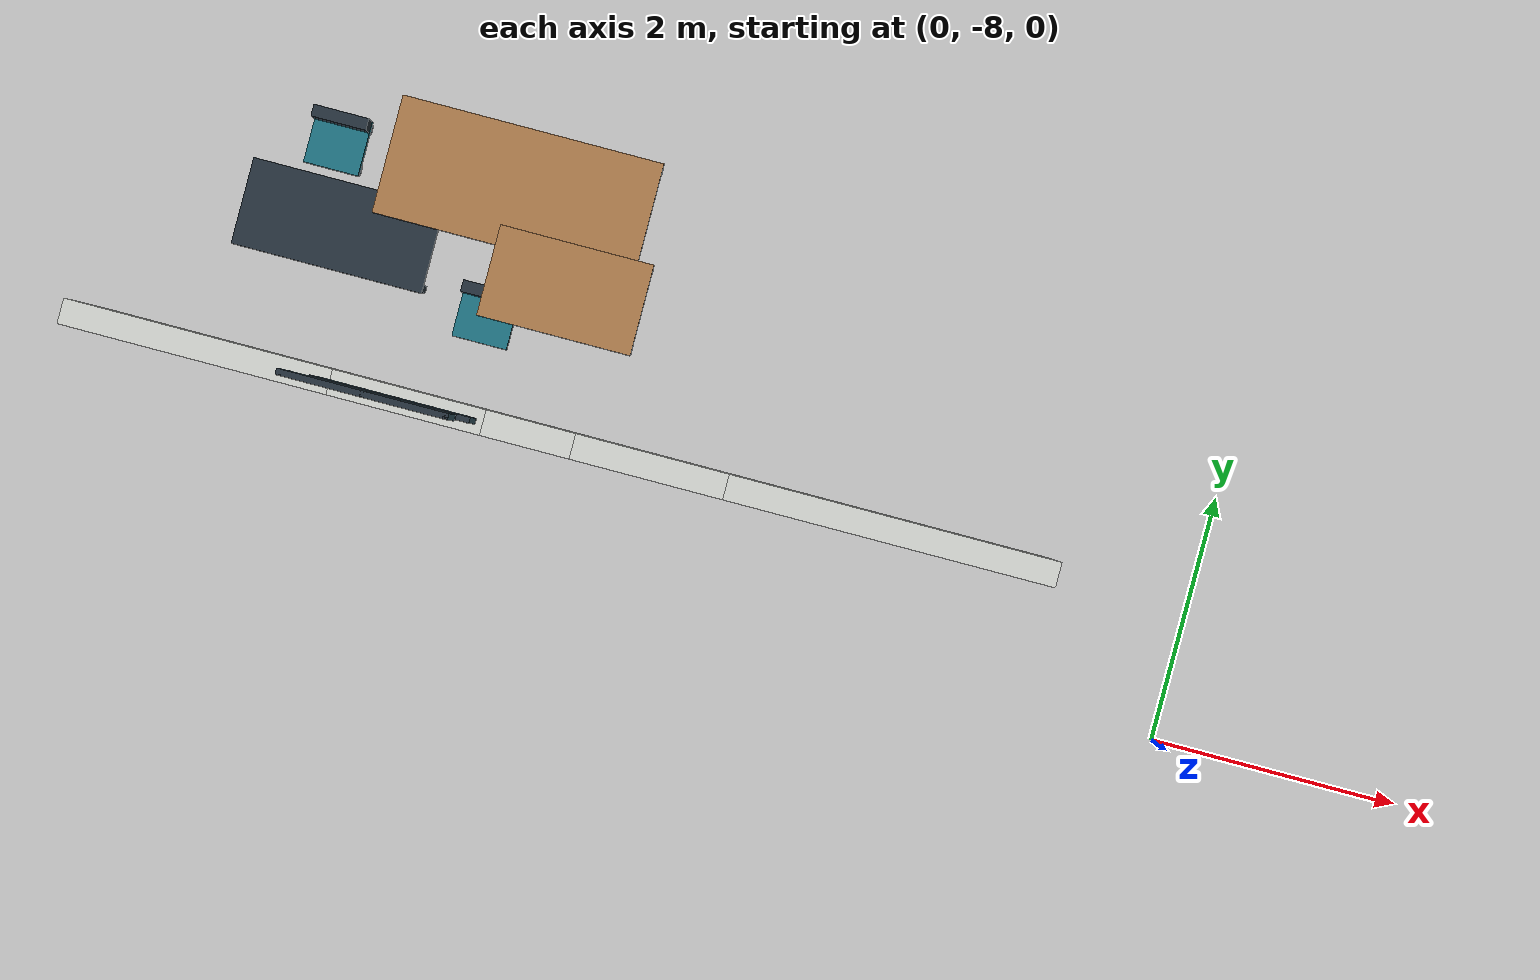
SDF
<sdf version="1.6">
 <world name="three_floor">
  <model name="f1_wall_004">
   <static>true</static>
   <pose>-5.1 -6.9 1.5 0 0 0</pose>
   <link name="f1_wall_004_link">
    <collision name="f1_wall_004_link_panel_0_collision">
     <pose>-2.85 0 0 0 0 0</pose>
     <geometry><box><size>2.1 0.2 3</size></box></geometry>
    </collision>
    <visual name="f1_wall_004_link_panel_0_visual">
     <pose>-2.85 0 0 0 0 0</pose>
     <geometry><box><size>2.1 0.2 3</size></box></geometry>
     <material><ambient>.84 .85 .83 1</ambient><diffuse>.84 .85 .83 1</diffuse></material>
    </visual>
    <collision name="f1_wall_004_link_sill_0_collision">
     <pose>-1.2 0 -1.025 0 0 0</pose>
     <geometry><box><size>1.2 0.2 0.95</size></box></geometry>
    </collision>
    <visual name="f1_wall_004_link_sill_0_visual">
     <pose>-1.2 0 -1.025 0 0 0</pose>
     <geometry><box><size>1.2 0.2 0.95</size></box></geometry>
     <material><ambient>.84 .85 .83 1</ambient><diffuse>.84 .85 .83 1</diffuse></material>
    </visual>
    <collision name="f1_wall_004_link_header_0_collision">
     <pose>-1.2 0 1 0 0 0</pose>
     <geometry><box><size>1.2 0.2 1</size></box></geometry>
    </collision>
    <visual name="f1_wall_004_link_header_0_visual">
     <pose>-1.2 0 1 0 0 0</pose>
     <geometry><box><size>1.2 0.2 1</size></box></geometry>
     <material><ambient>.84 .85 .83 1</ambient><diffuse>.84 .85 .83 1</diffuse></material>
    </visual>
    <collision name="f1_wall_004_link_panel_1_collision">
     <pose>-0.25 0 0 0 0 0</pose>
     <geometry><box><size>0.7 0.2 3</size></box></geometry>
    </collision>
    <visual name="f1_wall_004_link_panel_1_visual">
     <pose>-0.25 0 0 0 0 0</pose>
     <geometry><box><size>0.7 0.2 3</size></box></geometry>
     <material><ambient>.84 .85 .83 1</ambient><diffuse>.84 .85 .83 1</diffuse></material>
    </visual>
    <collision name="f1_wall_004_link_sill_1_collision">
     <pose>0.7 0 -1.025 0 0 0</pose>
     <geometry><box><size>1.2 0.2 0.95</size></box></geometry>
    </collision>
    <visual name="f1_wall_004_link_sill_1_visual">
     <pose>0.7 0 -1.025 0 0 0</pose>
     <geometry><box><size>1.2 0.2 0.95</size></box></geometry>
     <material><ambient>.84 .85 .83 1</ambient><diffuse>.84 .85 .83 1</diffuse></material>
    </visual>
    <collision name="f1_wall_004_link_header_1_collision">
     <pose>0.7 0 1 0 0 0</pose>
     <geometry><box><size>1.2 0.2 1</size></box></geometry>
    </collision>
    <visual name="f1_wall_004_link_header_1_visual">
     <pose>0.7 0 1 0 0 0</pose>
     <geometry><box><size>1.2 0.2 1</size></box></geometry>
     <material><ambient>.84 .85 .83 1</ambient><diffuse>.84 .85 .83 1</diffuse></material>
    </visual>
    <collision name="f1_wall_004_link_last_panel_collision">
     <pose>2.6 0 0 0 0 0</pose>
     <geometry><box><size>2.6 0.2 3</size></box></geometry>
    </collision>
    <visual name="f1_wall_004_link_last_panel_visual">
     <pose>2.6 0 0 0 0 0</pose>
     <geometry><box><size>2.6 0.2 3</size></box></geometry>
     <material><ambient>.84 .85 .83 1</ambient><diffuse>.84 .85 .83 1</diffuse></material>
    </visual>
   </link>
  </model>
  <model name="f1_s2_window_08">
   <static>true</static>
   <pose>-6.3 -6.9 1.475 0 0 0</pose>
   <link name="f1_s2_window_08_link">
    <collision name="f1_s2_window_08_link_glass_collision">
     <geometry><box><size>1.2 0.045 1.05</size></box></geometry>
    </collision>
    <visual name="f1_s2_window_08_link_glass_visual">
     <geometry><box><size>1.2 0.045 1.05</size></box></geometry>
     <material><ambient>0.44 0.76 0.83 1</ambient><diffuse>0.44 0.76 0.83 1</diffuse></material>
     <transparency>0.65</transparency>
    </visual>
    <collision name="f1_s2_window_08_link_mullion_-0.58_collision">
     <pose>-0.58 0 0 0 0 0</pose>
     <geometry><box><size>0.035 0.045 1.05</size></box></geometry>
    </collision>
    <visual name="f1_s2_window_08_link_mullion_-0.58_visual">
     <pose>-0.58 0 0 0 0 0</pose>
     <geometry><box><size>0.035 0.045 1.05</size></box></geometry>
     <material><ambient>0.15 0.2 0.24 1</ambient><diffuse>0.15 0.2 0.24 1</diffuse></material>
    </visual>
    <collision name="f1_s2_window_08_link_mullion_0.58_collision">
     <pose>0.58 0 0 0 0 0</pose>
     <geometry><box><size>0.035 0.045 1.05</size></box></geometry>
    </collision>
    <visual name="f1_s2_window_08_link_mullion_0.58_visual">
     <pose>0.58 0 0 0 0 0</pose>
     <geometry><box><size>0.035 0.045 1.05</size></box></geometry>
     <material><ambient>0.15 0.2 0.24 1</ambient><diffuse>0.15 0.2 0.24 1</diffuse></material>
    </visual>
    <collision name="f1_s2_window_08_link_mullion_0_collision">
     <geometry><box><size>0.035 0.045 1.05</size></box></geometry>
    </collision>
    <visual name="f1_s2_window_08_link_mullion_0_visual">
     <geometry><box><size>0.035 0.045 1.05</size></box></geometry>
     <material><ambient>0.15 0.2 0.24 1</ambient><diffuse>0.15 0.2 0.24 1</diffuse></material>
    </visual>
    <collision name="f1_s2_window_08_link_frame_-0.51_collision">
     <pose>0 0 -0.51 0 0 0</pose>
     <geometry><box><size>1.2 0.045 0.03</size></box></geometry>
    </collision>
    <visual name="f1_s2_window_08_link_frame_-0.51_visual">
     <pose>0 0 -0.51 0 0 0</pose>
     <geometry><box><size>1.2 0.045 0.03</size></box></geometry>
     <material><ambient>0.15 0.2 0.24 1</ambient><diffuse>0.15 0.2 0.24 1</diffuse></material>
    </visual>
    <collision name="f1_s2_window_08_link_frame_0.51_collision">
     <pose>0 0 0.51 0 0 0</pose>
     <geometry><box><size>1.2 0.045 0.03</size></box></geometry>
    </collision>
    <visual name="f1_s2_window_08_link_frame_0.51_visual">
     <pose>0 0 0.51 0 0 0</pose>
     <geometry><box><size>1.2 0.045 0.03</size></box></geometry>
     <material><ambient>0.15 0.2 0.24 1</ambient><diffuse>0.15 0.2 0.24 1</diffuse></material>
    </visual>
   </link>
  </model>
  <model name="f2_s2_window_19">
   <static>true</static>
   <pose>-6.3 -6.9 4.675 0 0 0</pose>
   <link name="f2_s2_window_19_link">
    <collision name="f2_s2_window_19_link_glass_collision">
     <geometry><box><size>1.2 0.045 1.05</size></box></geometry>
    </collision>
    <visual name="f2_s2_window_19_link_glass_visual">
     <geometry><box><size>1.2 0.045 1.05</size></box></geometry>
     <material><ambient>0.44 0.76 0.83 1</ambient><diffuse>0.44 0.76 0.83 1</diffuse></material>
     <transparency>0.65</transparency>
    </visual>
    <collision name="f2_s2_window_19_link_mullion_-0.58_collision">
     <pose>-0.58 0 0 0 0 0</pose>
     <geometry><box><size>0.035 0.045 1.05</size></box></geometry>
    </collision>
    <visual name="f2_s2_window_19_link_mullion_-0.58_visual">
     <pose>-0.58 0 0 0 0 0</pose>
     <geometry><box><size>0.035 0.045 1.05</size></box></geometry>
     <material><ambient>0.15 0.2 0.24 1</ambient><diffuse>0.15 0.2 0.24 1</diffuse></material>
    </visual>
    <collision name="f2_s2_window_19_link_mullion_0.58_collision">
     <pose>0.58 0 0 0 0 0</pose>
     <geometry><box><size>0.035 0.045 1.05</size></box></geometry>
    </collision>
    <visual name="f2_s2_window_19_link_mullion_0.58_visual">
     <pose>0.58 0 0 0 0 0</pose>
     <geometry><box><size>0.035 0.045 1.05</size></box></geometry>
     <material><ambient>0.15 0.2 0.24 1</ambient><diffuse>0.15 0.2 0.24 1</diffuse></material>
    </visual>
    <collision name="f2_s2_window_19_link_mullion_0_collision">
     <geometry><box><size>0.035 0.045 1.05</size></box></geometry>
    </collision>
    <visual name="f2_s2_window_19_link_mullion_0_visual">
     <geometry><box><size>0.035 0.045 1.05</size></box></geometry>
     <material><ambient>0.15 0.2 0.24 1</ambient><diffuse>0.15 0.2 0.24 1</diffuse></material>
    </visual>
    <collision name="f2_s2_window_19_link_frame_-0.51_collision">
     <pose>0 0 -0.51 0 0 0</pose>
     <geometry><box><size>1.2 0.045 0.03</size></box></geometry>
    </collision>
    <visual name="f2_s2_window_19_link_frame_-0.51_visual">
     <pose>0 0 -0.51 0 0 0</pose>
     <geometry><box><size>1.2 0.045 0.03</size></box></geometry>
     <material><ambient>0.15 0.2 0.24 1</ambient><diffuse>0.15 0.2 0.24 1</diffuse></material>
    </visual>
    <collision name="f2_s2_window_19_link_frame_0.51_collision">
     <pose>0 0 0.51 0 0 0</pose>
     <geometry><box><size>1.2 0.045 0.03</size></box></geometry>
    </collision>
    <visual name="f2_s2_window_19_link_frame_0.51_visual">
     <pose>0 0 0.51 0 0 0</pose>
     <geometry><box><size>1.2 0.045 0.03</size></box></geometry>
     <material><ambient>0.15 0.2 0.24 1</ambient><diffuse>0.15 0.2 0.24 1</diffuse></material>
    </visual>
   </link>
  </model>
  <model name="f3_s2_window_31">
   <static>true</static>
   <pose>-6.3 -6.9 7.875 0 0 0</pose>
   <link name="f3_s2_window_31_link">
    <collision name="f3_s2_window_31_link_glass_collision">
     <geometry><box><size>1.2 0.045 1.05</size></box></geometry>
    </collision>
    <visual name="f3_s2_window_31_link_glass_visual">
     <geometry><box><size>1.2 0.045 1.05</size></box></geometry>
     <material><ambient>0.44 0.76 0.83 1</ambient><diffuse>0.44 0.76 0.83 1</diffuse></material>
     <transparency>0.65</transparency>
    </visual>
    <collision name="f3_s2_window_31_link_mullion_-0.58_collision">
     <pose>-0.58 0 0 0 0 0</pose>
     <geometry><box><size>0.035 0.045 1.05</size></box></geometry>
    </collision>
    <visual name="f3_s2_window_31_link_mullion_-0.58_visual">
     <pose>-0.58 0 0 0 0 0</pose>
     <geometry><box><size>0.035 0.045 1.05</size></box></geometry>
     <material><ambient>0.15 0.2 0.24 1</ambient><diffuse>0.15 0.2 0.24 1</diffuse></material>
    </visual>
    <collision name="f3_s2_window_31_link_mullion_0.58_collision">
     <pose>0.58 0 0 0 0 0</pose>
     <geometry><box><size>0.035 0.045 1.05</size></box></geometry>
    </collision>
    <visual name="f3_s2_window_31_link_mullion_0.58_visual">
     <pose>0.58 0 0 0 0 0</pose>
     <geometry><box><size>0.035 0.045 1.05</size></box></geometry>
     <material><ambient>0.15 0.2 0.24 1</ambient><diffuse>0.15 0.2 0.24 1</diffuse></material>
    </visual>
    <collision name="f3_s2_window_31_link_mullion_0_collision">
     <geometry><box><size>0.035 0.045 1.05</size></box></geometry>
    </collision>
    <visual name="f3_s2_window_31_link_mullion_0_visual">
     <geometry><box><size>0.035 0.045 1.05</size></box></geometry>
     <material><ambient>0.15 0.2 0.24 1</ambient><diffuse>0.15 0.2 0.24 1</diffuse></material>
    </visual>
    <collision name="f3_s2_window_31_link_frame_-0.51_collision">
     <pose>0 0 -0.51 0 0 0</pose>
     <geometry><box><size>1.2 0.045 0.03</size></box></geometry>
    </collision>
    <visual name="f3_s2_window_31_link_frame_-0.51_visual">
     <pose>0 0 -0.51 0 0 0</pose>
     <geometry><box><size>1.2 0.045 0.03</size></box></geometry>
     <material><ambient>0.15 0.2 0.24 1</ambient><diffuse>0.15 0.2 0.24 1</diffuse></material>
    </visual>
    <collision name="f3_s2_window_31_link_frame_0.51_collision">
     <pose>0 0 0.51 0 0 0</pose>
     <geometry><box><size>1.2 0.045 0.03</size></box></geometry>
    </collision>
    <visual name="f3_s2_window_31_link_frame_0.51_visual">
     <pose>0 0 0.51 0 0 0</pose>
     <geometry><box><size>1.2 0.045 0.03</size></box></geometry>
     <material><ambient>0.15 0.2 0.24 1</ambient><diffuse>0.15 0.2 0.24 1</diffuse></material>
    </visual>
   </link>
  </model>
  <model name="f1_s2_furniture_04_workbench">
   <static>true</static>
   <pose>-7.3 -5.7 0 0 0 0</pose>
   <link name="f1_s2_furniture_04_workbench_link">
    <collision name="f1_s2_furniture_04_workbench_link_top_collision">
     <pose>0 0 0.775 0 0 0</pose>
     <geometry><box><size>1.55 0.7 0.09</size></box></geometry>
    </collision>
    <visual name="f1_s2_furniture_04_workbench_link_top_visual">
     <pose>0 0 0.775 0 0 0</pose>
     <geometry><box><size>1.55 0.7 0.09</size></box></geometry>
     <material><ambient>0.15 0.2 0.24 1</ambient><diffuse>0.15 0.2 0.24 1</diffuse></material>
    </visual>
    <collision name="f1_s2_furniture_04_workbench_link_leg_-0.73_-0.305_collision">
     <pose>-0.73 -0.305 0.365 0 0 0</pose>
     <geometry><box><size>0.06 0.06 0.73</size></box></geometry>
    </collision>
    <visual name="f1_s2_furniture_04_workbench_link_leg_-0.73_-0.305_visual">
     <pose>-0.73 -0.305 0.365 0 0 0</pose>
     <geometry><box><size>0.06 0.06 0.73</size></box></geometry>
     <material><ambient>0.15 0.2 0.24 1</ambient><diffuse>0.15 0.2 0.24 1</diffuse></material>
    </visual>
    <collision name="f1_s2_furniture_04_workbench_link_leg_-0.73_0.305_collision">
     <pose>-0.73 0.305 0.365 0 0 0</pose>
     <geometry><box><size>0.06 0.06 0.73</size></box></geometry>
    </collision>
    <visual name="f1_s2_furniture_04_workbench_link_leg_-0.73_0.305_visual">
     <pose>-0.73 0.305 0.365 0 0 0</pose>
     <geometry><box><size>0.06 0.06 0.73</size></box></geometry>
     <material><ambient>0.15 0.2 0.24 1</ambient><diffuse>0.15 0.2 0.24 1</diffuse></material>
    </visual>
    <collision name="f1_s2_furniture_04_workbench_link_leg_0.73_-0.305_collision">
     <pose>0.73 -0.305 0.365 0 0 0</pose>
     <geometry><box><size>0.06 0.06 0.73</size></box></geometry>
    </collision>
    <visual name="f1_s2_furniture_04_workbench_link_leg_0.73_-0.305_visual">
     <pose>0.73 -0.305 0.365 0 0 0</pose>
     <geometry><box><size>0.06 0.06 0.73</size></box></geometry>
     <material><ambient>0.15 0.2 0.24 1</ambient><diffuse>0.15 0.2 0.24 1</diffuse></material>
    </visual>
    <collision name="f1_s2_furniture_04_workbench_link_leg_0.73_0.305_collision">
     <pose>0.73 0.305 0.365 0 0 0</pose>
     <geometry><box><size>0.06 0.06 0.73</size></box></geometry>
    </collision>
    <visual name="f1_s2_furniture_04_workbench_link_leg_0.73_0.305_visual">
     <pose>0.73 0.305 0.365 0 0 0</pose>
     <geometry><box><size>0.06 0.06 0.73</size></box></geometry>
     <material><ambient>0.15 0.2 0.24 1</ambient><diffuse>0.15 0.2 0.24 1</diffuse></material>
    </visual>
   </link>
  </model>
  <model name="f2_s2_furniture_27_table">
   <static>true</static>
   <pose>-5.85 -5.15 3.2 0 0 0</pose>
   <link name="f2_s2_furniture_27_table_link">
    <collision name="f2_s2_furniture_27_table_link_top_collision">
     <pose>0 0 0.715 0 0 0</pose>
     <geometry><box><size>2 0.9 0.09</size></box></geometry>
    </collision>
    <visual name="f2_s2_furniture_27_table_link_top_visual">
     <pose>0 0 0.715 0 0 0</pose>
     <geometry><box><size>2 0.9 0.09</size></box></geometry>
     <material><ambient>0.69 0.49 0.3 1</ambient><diffuse>0.69 0.49 0.3 1</diffuse></material>
    </visual>
    <collision name="f2_s2_furniture_27_table_link_leg_-0.955_-0.405_collision">
     <pose>-0.955 -0.405 0.335 0 0 0</pose>
     <geometry><box><size>0.06 0.06 0.67</size></box></geometry>
    </collision>
    <visual name="f2_s2_furniture_27_table_link_leg_-0.955_-0.405_visual">
     <pose>-0.955 -0.405 0.335 0 0 0</pose>
     <geometry><box><size>0.06 0.06 0.67</size></box></geometry>
     <material><ambient>0.15 0.2 0.24 1</ambient><diffuse>0.15 0.2 0.24 1</diffuse></material>
    </visual>
    <collision name="f2_s2_furniture_27_table_link_leg_-0.955_0.405_collision">
     <pose>-0.955 0.405 0.335 0 0 0</pose>
     <geometry><box><size>0.06 0.06 0.67</size></box></geometry>
    </collision>
    <visual name="f2_s2_furniture_27_table_link_leg_-0.955_0.405_visual">
     <pose>-0.955 0.405 0.335 0 0 0</pose>
     <geometry><box><size>0.06 0.06 0.67</size></box></geometry>
     <material><ambient>0.15 0.2 0.24 1</ambient><diffuse>0.15 0.2 0.24 1</diffuse></material>
    </visual>
    <collision name="f2_s2_furniture_27_table_link_leg_0.955_-0.405_collision">
     <pose>0.955 -0.405 0.335 0 0 0</pose>
     <geometry><box><size>0.06 0.06 0.67</size></box></geometry>
    </collision>
    <visual name="f2_s2_furniture_27_table_link_leg_0.955_-0.405_visual">
     <pose>0.955 -0.405 0.335 0 0 0</pose>
     <geometry><box><size>0.06 0.06 0.67</size></box></geometry>
     <material><ambient>0.15 0.2 0.24 1</ambient><diffuse>0.15 0.2 0.24 1</diffuse></material>
    </visual>
    <collision name="f2_s2_furniture_27_table_link_leg_0.955_0.405_collision">
     <pose>0.955 0.405 0.335 0 0 0</pose>
     <geometry><box><size>0.06 0.06 0.67</size></box></geometry>
    </collision>
    <visual name="f2_s2_furniture_27_table_link_leg_0.955_0.405_visual">
     <pose>0.955 0.405 0.335 0 0 0</pose>
     <geometry><box><size>0.06 0.06 0.67</size></box></geometry>
     <material><ambient>0.15 0.2 0.24 1</ambient><diffuse>0.15 0.2 0.24 1</diffuse></material>
    </visual>
   </link>
  </model>
  <model name="f2_s2_furniture_28_seat">
   <static>true</static>
   <pose>-7.25 -5.15 3.2 0 0 0</pose>
   <link name="f2_s2_furniture_28_seat_link">
    <collision name="f2_s2_furniture_28_seat_link_seat_collision">
     <pose>0 0 0.4 0 0 0</pose>
     <geometry><box><size>0.42 0.42 0.14</size></box></geometry>
    </collision>
    <visual name="f2_s2_furniture_28_seat_link_seat_visual">
     <pose>0 0 0.4 0 0 0</pose>
     <geometry><box><size>0.42 0.42 0.14</size></box></geometry>
     <material><ambient>0.12 0.46 0.52 1</ambient><diffuse>0.12 0.46 0.52 1</diffuse></material>
    </visual>
    <collision name="f2_s2_furniture_28_seat_link_back_collision">
     <pose>0 0.165 0.68 0 0 0</pose>
     <geometry><box><size>0.42 0.09 0.42</size></box></geometry>
    </collision>
    <visual name="f2_s2_furniture_28_seat_link_back_visual">
     <pose>0 0.165 0.68 0 0 0</pose>
     <geometry><box><size>0.42 0.09 0.42</size></box></geometry>
     <material><ambient>0.15 0.2 0.24 1</ambient><diffuse>0.15 0.2 0.24 1</diffuse></material>
    </visual>
    <collision name="f2_s2_furniture_28_seat_link_leg_-0.15999999999999998_-0.15999999999999998_collision">
     <pose>-0.16 -0.16 0.165 0 0 0</pose>
     <geometry><box><size>0.07 0.07 0.33</size></box></geometry>
    </collision>
    <visual name="f2_s2_furniture_28_seat_link_leg_-0.15999999999999998_-0.15999999999999998_visual">
     <pose>-0.16 -0.16 0.165 0 0 0</pose>
     <geometry><box><size>0.07 0.07 0.33</size></box></geometry>
     <material><ambient>0.15 0.2 0.24 1</ambient><diffuse>0.15 0.2 0.24 1</diffuse></material>
    </visual>
    <collision name="f2_s2_furniture_28_seat_link_leg_-0.15999999999999998_0.15999999999999998_collision">
     <pose>-0.16 0.16 0.165 0 0 0</pose>
     <geometry><box><size>0.07 0.07 0.33</size></box></geometry>
    </collision>
    <visual name="f2_s2_furniture_28_seat_link_leg_-0.15999999999999998_0.15999999999999998_visual">
     <pose>-0.16 0.16 0.165 0 0 0</pose>
     <geometry><box><size>0.07 0.07 0.33</size></box></geometry>
     <material><ambient>0.15 0.2 0.24 1</ambient><diffuse>0.15 0.2 0.24 1</diffuse></material>
    </visual>
    <collision name="f2_s2_furniture_28_seat_link_leg_0.15999999999999998_-0.15999999999999998_collision">
     <pose>0.16 -0.16 0.165 0 0 0</pose>
     <geometry><box><size>0.07 0.07 0.33</size></box></geometry>
    </collision>
    <visual name="f2_s2_furniture_28_seat_link_leg_0.15999999999999998_-0.15999999999999998_visual">
     <pose>0.16 -0.16 0.165 0 0 0</pose>
     <geometry><box><size>0.07 0.07 0.33</size></box></geometry>
     <material><ambient>0.15 0.2 0.24 1</ambient><diffuse>0.15 0.2 0.24 1</diffuse></material>
    </visual>
    <collision name="f2_s2_furniture_28_seat_link_leg_0.15999999999999998_0.15999999999999998_collision">
     <pose>0.16 0.16 0.165 0 0 0</pose>
     <geometry><box><size>0.07 0.07 0.33</size></box></geometry>
    </collision>
    <visual name="f2_s2_furniture_28_seat_link_leg_0.15999999999999998_0.15999999999999998_visual">
     <pose>0.16 0.16 0.165 0 0 0</pose>
     <geometry><box><size>0.07 0.07 0.33</size></box></geometry>
     <material><ambient>0.15 0.2 0.24 1</ambient><diffuse>0.15 0.2 0.24 1</diffuse></material>
    </visual>
   </link>
  </model>
  <model name="f2_s2_furniture_30_seat">
   <static>true</static>
   <pose>-5.85 -6.12 3.2 0 0 0</pose>
   <link name="f2_s2_furniture_30_seat_link">
    <collision name="f2_s2_furniture_30_seat_link_seat_collision">
     <pose>0 0 0.4 0 0 0</pose>
     <geometry><box><size>0.42 0.42 0.14</size></box></geometry>
    </collision>
    <visual name="f2_s2_furniture_30_seat_link_seat_visual">
     <pose>0 0 0.4 0 0 0</pose>
     <geometry><box><size>0.42 0.42 0.14</size></box></geometry>
     <material><ambient>0.12 0.46 0.52 1</ambient><diffuse>0.12 0.46 0.52 1</diffuse></material>
    </visual>
    <collision name="f2_s2_furniture_30_seat_link_back_collision">
     <pose>0 0.165 0.68 0 0 0</pose>
     <geometry><box><size>0.42 0.09 0.42</size></box></geometry>
    </collision>
    <visual name="f2_s2_furniture_30_seat_link_back_visual">
     <pose>0 0.165 0.68 0 0 0</pose>
     <geometry><box><size>0.42 0.09 0.42</size></box></geometry>
     <material><ambient>0.15 0.2 0.24 1</ambient><diffuse>0.15 0.2 0.24 1</diffuse></material>
    </visual>
    <collision name="f2_s2_furniture_30_seat_link_leg_-0.15999999999999998_-0.15999999999999998_collision">
     <pose>-0.16 -0.16 0.165 0 0 0</pose>
     <geometry><box><size>0.07 0.07 0.33</size></box></geometry>
    </collision>
    <visual name="f2_s2_furniture_30_seat_link_leg_-0.15999999999999998_-0.15999999999999998_visual">
     <pose>-0.16 -0.16 0.165 0 0 0</pose>
     <geometry><box><size>0.07 0.07 0.33</size></box></geometry>
     <material><ambient>0.15 0.2 0.24 1</ambient><diffuse>0.15 0.2 0.24 1</diffuse></material>
    </visual>
    <collision name="f2_s2_furniture_30_seat_link_leg_-0.15999999999999998_0.15999999999999998_collision">
     <pose>-0.16 0.16 0.165 0 0 0</pose>
     <geometry><box><size>0.07 0.07 0.33</size></box></geometry>
    </collision>
    <visual name="f2_s2_furniture_30_seat_link_leg_-0.15999999999999998_0.15999999999999998_visual">
     <pose>-0.16 0.16 0.165 0 0 0</pose>
     <geometry><box><size>0.07 0.07 0.33</size></box></geometry>
     <material><ambient>0.15 0.2 0.24 1</ambient><diffuse>0.15 0.2 0.24 1</diffuse></material>
    </visual>
    <collision name="f2_s2_furniture_30_seat_link_leg_0.15999999999999998_-0.15999999999999998_collision">
     <pose>0.16 -0.16 0.165 0 0 0</pose>
     <geometry><box><size>0.07 0.07 0.33</size></box></geometry>
    </collision>
    <visual name="f2_s2_furniture_30_seat_link_leg_0.15999999999999998_-0.15999999999999998_visual">
     <pose>0.16 -0.16 0.165 0 0 0</pose>
     <geometry><box><size>0.07 0.07 0.33</size></box></geometry>
     <material><ambient>0.15 0.2 0.24 1</ambient><diffuse>0.15 0.2 0.24 1</diffuse></material>
    </visual>
    <collision name="f2_s2_furniture_30_seat_link_leg_0.15999999999999998_0.15999999999999998_collision">
     <pose>0.16 0.16 0.165 0 0 0</pose>
     <geometry><box><size>0.07 0.07 0.33</size></box></geometry>
    </collision>
    <visual name="f2_s2_furniture_30_seat_link_leg_0.15999999999999998_0.15999999999999998_visual">
     <pose>0.16 0.16 0.165 0 0 0</pose>
     <geometry><box><size>0.07 0.07 0.33</size></box></geometry>
     <material><ambient>0.15 0.2 0.24 1</ambient><diffuse>0.15 0.2 0.24 1</diffuse></material>
    </visual>
   </link>
  </model>
  <model name="f3_s2_furniture_58_desk">
   <static>true</static>
   <pose>-5.2 -5.85 6.4 0 0 0</pose>
   <link name="f3_s2_furniture_58_desk_link">
    <collision name="f3_s2_furniture_58_desk_link_top_collision">
     <pose>0 0 0.715 0 0 0</pose>
     <geometry><box><size>1.1 0.65 0.09</size></box></geometry>
    </collision>
    <visual name="f3_s2_furniture_58_desk_link_top_visual">
     <pose>0 0 0.715 0 0 0</pose>
     <geometry><box><size>1.1 0.65 0.09</size></box></geometry>
     <material><ambient>0.69 0.49 0.3 1</ambient><diffuse>0.69 0.49 0.3 1</diffuse></material>
    </visual>
    <collision name="f3_s2_furniture_58_desk_link_leg_-0.505_-0.28_collision">
     <pose>-0.505 -0.28 0.335 0 0 0</pose>
     <geometry><box><size>0.06 0.06 0.67</size></box></geometry>
    </collision>
    <visual name="f3_s2_furniture_58_desk_link_leg_-0.505_-0.28_visual">
     <pose>-0.505 -0.28 0.335 0 0 0</pose>
     <geometry><box><size>0.06 0.06 0.67</size></box></geometry>
     <material><ambient>0.15 0.2 0.24 1</ambient><diffuse>0.15 0.2 0.24 1</diffuse></material>
    </visual>
    <collision name="f3_s2_furniture_58_desk_link_leg_-0.505_0.28_collision">
     <pose>-0.505 0.28 0.335 0 0 0</pose>
     <geometry><box><size>0.06 0.06 0.67</size></box></geometry>
    </collision>
    <visual name="f3_s2_furniture_58_desk_link_leg_-0.505_0.28_visual">
     <pose>-0.505 0.28 0.335 0 0 0</pose>
     <geometry><box><size>0.06 0.06 0.67</size></box></geometry>
     <material><ambient>0.15 0.2 0.24 1</ambient><diffuse>0.15 0.2 0.24 1</diffuse></material>
    </visual>
    <collision name="f3_s2_furniture_58_desk_link_leg_0.505_-0.28_collision">
     <pose>0.505 -0.28 0.335 0 0 0</pose>
     <geometry><box><size>0.06 0.06 0.67</size></box></geometry>
    </collision>
    <visual name="f3_s2_furniture_58_desk_link_leg_0.505_-0.28_visual">
     <pose>0.505 -0.28 0.335 0 0 0</pose>
     <geometry><box><size>0.06 0.06 0.67</size></box></geometry>
     <material><ambient>0.15 0.2 0.24 1</ambient><diffuse>0.15 0.2 0.24 1</diffuse></material>
    </visual>
    <collision name="f3_s2_furniture_58_desk_link_leg_0.505_0.28_collision">
     <pose>0.505 0.28 0.335 0 0 0</pose>
     <geometry><box><size>0.06 0.06 0.67</size></box></geometry>
    </collision>
    <visual name="f3_s2_furniture_58_desk_link_leg_0.505_0.28_visual">
     <pose>0.505 0.28 0.335 0 0 0</pose>
     <geometry><box><size>0.06 0.06 0.67</size></box></geometry>
     <material><ambient>0.15 0.2 0.24 1</ambient><diffuse>0.15 0.2 0.24 1</diffuse></material>
    </visual>
   </link>
  </model>
 </world>
</sdf>
